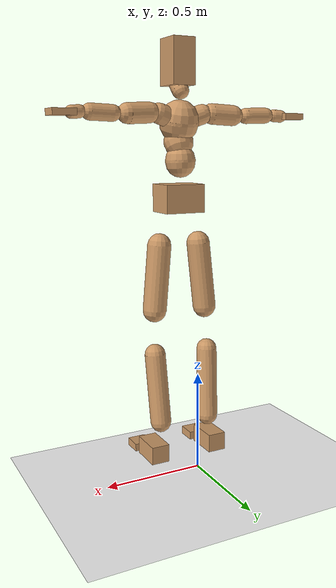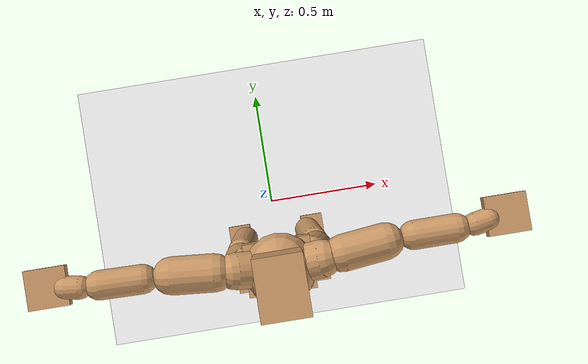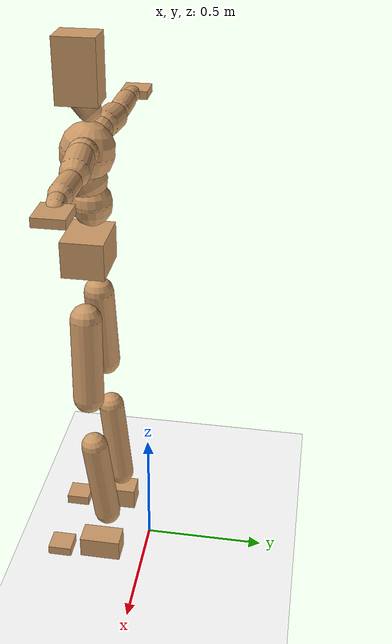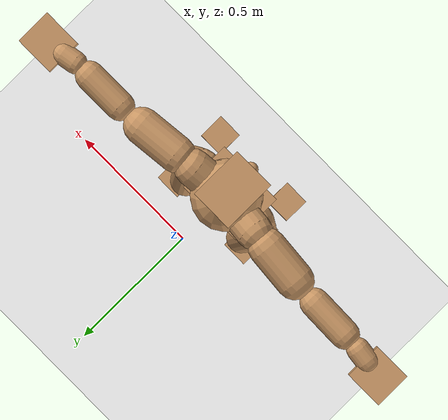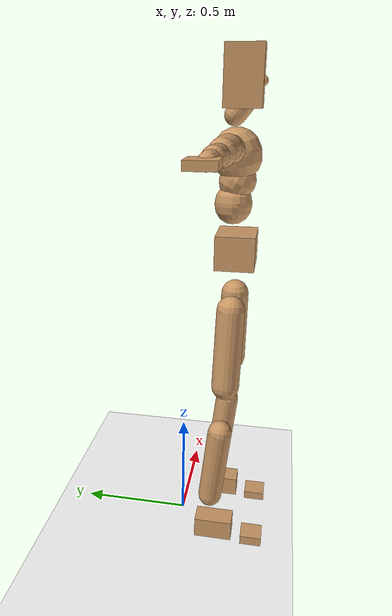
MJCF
<mujoco model="humanoid">
  <option integrator="implicitfast" />

  <visual>
    <global offwidth="1280" offheight="960" />
    <headlight active="1" ambient="0.34 0.34 0.34" diffuse="0.5 0.5 0.5" />
  </visual>

  <default>
    <joint damping="2" stiffness="2" armature="0.01" limited="true" solimplimit="0 .99 .01" />
    <geom condim="1" friction="0.7 0.005 0.0001" solimp=".99 .99 .003" solref="0.015 1" margin="0.001" rgba="0.8 0.6 .4 1" />
    <default class="smplcontact">
      <geom condim="3" friction="1. 0.005 0.0001" solref="0.015 1" solimp="0.98 0.98 0.001" priority="1" />
    </default>
    <default class="stiff_medium">
      <joint stiffness="10" />
    </default>
    <default class="stiff_medium_higher">
      <joint stiffness="50" />
    </default>
    <default class="stiff_high">
      <joint stiffness="100" />
    </default>
  </default>

  <asset>
    <texture type="skybox" builtin="gradient" rgb1="0.99 0.99 0.99" rgb2="0.608 0.828 0.892" width="100" />
    <texture builtin="flat" height="1278" mark="cross" markrgb="1 1 1" name="texgeom" random="0.01" rgb1="0.8 0.6 0.4" rgb2="0.8 0.6 0.4" type="cube" width="127" />
    <texture name="texplane" type="2d" builtin="checker" markrgb="1 1 1" rgb1="0.756 0.772 0.76" rgb2="0.6 0.6 0.6" width="100" height="100" />
    <material name="MatPlane" reflectance="0.5" texture="texplane" texrepeat="1 1" texuniform="true" />
    <material name="geom" texture="texgeom" texuniform="true" />
  </asset>

  <worldbody>
    <light name="tracking_light" pos="0 0 7" dir="0 0 -1" directional="true" cutoff="100" exponent="1" diffuse="1 1 1" specular="0.1 0.1 0.1" mode="trackcom" />
    <camera name="back" pos="0 3 2.4" xyaxes="-1 0 0 0 -1 2" mode="trackcom" />
    <camera name="side" pos="-3 0 2.4" xyaxes="0 -1 0 1 0 2" mode="trackcom" />
    <camera name="front_side" pos="-2.8 -2.8 0.8" xyaxes="0.5 -0.5 0 0.1 0.1 1" mode="trackcom" />
    <geom condim="3" name="floor" pos="0 0 0" rgba="1 1 1 1" size="100 100 .2" type="plane" material="MatPlane" />
    <body name="Pelvis" pos="-0.0018 -0.2233 1.39425" euler="90 0 0">
      <site name="Pelvis" size="0.01" />
      <freejoint name="Pelvis" />
      <geom type="box" pos="-0.0000 -0.0121 -0.0055" size="0.1069 0.0722 0.083" quat="1.0000 0.0000 0.0000 0.0000" density="3165.830099" name="Pelvis" />
      <body name="L_Hip" pos="0.10425 -0.1371 -0.0102">
        <joint name="L_Hip_x" type="hinge" pos="0 0 0" axis="1 0 0" stiffness="20.015620714285713" range="-160.0 22.92" class="stiff_medium" damping="35.83287359117287" armature="0.02851095036953482"/>
        <joint name="L_Hip_y" type="hinge" pos="0 0 0" axis="0 1 0" stiffness="19.866269693877552" range="-70.0 70.0" class="stiff_medium" damping="19.51687813836927" armature="0.019173631393182285"/>
        <joint name="L_Hip_z" type="hinge" pos="0 0 0" axis="0 0 1" stiffness="19.87905693877551" range="-28.65 90.0" class="stiff_medium" damping="23.812563344986486" armature="0.028524400066129187"/>
        <geom type="capsule" density="2040.816327" fromto="0.01035 -0.1125 -0.00135 0.0411 -0.4503 -0.0054" size="0.0615" name="L_Hip" />
        <body name="L_Knee" pos="0.05145 -0.5628 -0.00675">
          <joint name="L_Knee_x" type="hinge" pos="0 0 0" axis="1 0 0" range="-5.16 171.89" damping="17.990881080600367" armature="0.026396428561925703" stiffness="3.8318607346938776"/>
          <joint name="L_Knee_y" type="hinge" pos="0 0 0" axis="0 1 0" range="-4.58 6.88" damping="14.93313811553982" armature="0.01772299059098259" stiffness="3.932015113945578"/>
          <joint name="L_Knee_z" type="hinge" pos="0 0 0" axis="0 0 1" range="-6.88 4.58" damping="17.90521996986916" armature="0.026455159530536426" stiffness="3.7870318571428574"/>
          <geom type="capsule" density="1234.567901" fromto="-0.00405 -0.1194 -0.01305 -0.01635 -0.4776 -0.0525" size="0.0541" name="L_Knee" />
          <body name="L_Ankle" pos="-0.0204 -0.597 -0.06555">
            <joint name="L_Ankle_x" type="hinge" pos="0 0 0" axis="1 0 0" range="-45.84 45.84" class="stiff_medium" damping="9.919510798854771" armature="0.018221610090480823" stiffness="15.0"/>
            <joint name="L_Ankle_y" type="hinge" pos="0 0 0" axis="0 1 0" range="-74.48 22.92" class="stiff_medium" damping="4.917952818000753" armature="0.017915748088949295" stiffness="15.0"/>
            <joint name="L_Ankle_z" type="hinge" pos="0 0 0" axis="0 0 1" range="-4.58 4.58" class="stiff_medium" damping="9.269968981325261" armature="0.015913393502728242" stiffness="15.0"/>
            <geom type="box" pos="0.03495 -0.03585 0.0363" size="0.0483 0.0464 0.085" quat="1.0000 0.0000 0.0000 0.0000" density="449.071558" name="L_Ankle" class="smplcontact" />
            <body name="L_Toe" pos="0.0396 -0.0837 0.17895">
              <joint name="L_Toe_x" type="hinge" pos="0 0 0" axis="1 0 0" range="-91.67 22.92" armature="0.014752348892848894" damping="2.975131818207277" stiffness="3.0"/>
              <joint name="L_Toe_y" type="hinge" pos="0 0 0" axis="0 1 0" range="-4.58 4.58" armature="0.013348413454862205" damping="2.8300261611718933" stiffness="3.0"/>
              <joint name="L_Toe_z" type="hinge" pos="0 0 0" axis="0 0 1" range="-4.58 4.58" armature="0.010509731565734284" damping="2.51114295479978" stiffness="3.0"/>
              <geom type="box" pos="-0.0045 0.00825 0.0372" size="0.0478 0.02 0.0496" quat="1.0000 0.0000 0.0000 0.0000" density="423.206892" name="L_Toe" class="smplcontact" />
            </body>
          </body>
        </body>
      </body>
      <body name="R_Hip" pos="-0.10155 -0.13575 -0.00645">
        <joint name="R_Hip_x" type="hinge" pos="0 0 0" axis="1 0 0" stiffness="20.015620714285713" range="-160.0 22.92" class="stiff_medium" damping="35.83287359117287" armature="0.02851095036953482"/>
        <joint name="R_Hip_y" type="hinge" pos="0 0 0" axis="0 1 0" stiffness="19.866269693877552" range="-70.0 70.0" class="stiff_medium" damping="19.51687813836927" armature="0.019173631393182285"/>
        <joint name="R_Hip_z" type="hinge" pos="0 0 0" axis="0 0 1" stiffness="19.87905693877551" range="-90.0 28.65" class="stiff_medium" damping="23.812563344986486" armature="0.028524400066129187"/>
        <geom type="capsule" density="2040.816327" fromto="-0.01155 -0.11475 -0.0027 -0.0459 -0.45915 -0.01065" size="0.0606" name="R_Hip" />
        <body name="R_Knee" pos="-0.05745 -0.5739 -0.01335">
          <joint name="R_Knee_x" type="hinge" pos="0 0 0" axis="1 0 0" range="-5.16 171.89" damping="17.990881080600367" armature="0.026396428561925703" stiffness="3.8318607346938776"/>
          <joint name="R_Knee_y" type="hinge" pos="0 0 0" axis="0 1 0" range="-6.88 4.58" damping="14.93313811553982" armature="0.01772299059098259" stiffness="3.932015113945578"/>
          <joint name="R_Knee_z" type="hinge" pos="0 0 0" axis="0 0 1" range="-4.58 6.88" damping="17.90521996986916" armature="0.026455159530536426" stiffness="3.7870318571428574"/>
          <geom type="capsule" density="1234.567901" fromto="0.0048 -0.11955 -0.01275 0.0189 -0.47805 -0.0507" size="0.0541" name="R_Knee" />
          <body name="R_Ankle" pos="0.0237 -0.5976 -0.06345">
            <joint name="R_Ankle_x" type="hinge" pos="0 0 0" axis="1 0 0" range="-45.84 45.84" class="stiff_medium" damping="9.919510798854771" armature="0.018221610090480823" stiffness="15.0"/>
            <joint name="R_Ankle_y" type="hinge" pos="0 0 0" axis="0 1 0" range="-22.92 74.48" class="stiff_medium" damping="4.917952818000753" armature="0.017915748088949295" stiffness="15.0"/>
            <joint name="R_Ankle_z" type="hinge" pos="0 0 0" axis="0 0 1" range="-4.58 4.58" class="stiff_medium" damping="9.269968981325261" armature="0.015913393502728242" stiffness="15.0"/>
            <geom type="box" pos="-0.0318 -0.0261 0.0384" size="0.0483 0.0478 0.0865" quat="1.0000 0.0000 0.0000 0.0000" density="434.700981" name="R_Ankle" class="smplcontact" />
            <body name="R_Toe" pos="-0.0381 -0.07215 0.18495">
              <joint name="R_Toe_x" type="hinge" pos="0 0 0" axis="1 0 0" range="-91.67 22.92" armature="0.014752348892848894" damping="2.975131818207277" stiffness="3.0"/>
              <joint name="R_Toe_y" type="hinge" pos="0 0 0" axis="0 1 0" range="-4.58 4.58" armature="0.013348413454862205" damping="2.8300261611718933" stiffness="3.0"/>
              <joint name="R_Toe_z" type="hinge" pos="0 0 0" axis="0 0 1" range="-4.58 4.58" armature="0.010509731565734284" damping="2.51114295479978" stiffness="3.0"/>
              <geom type="box" pos="0.0063 0.00675 0.03405" size="0.0479 0.0216 0.0493" quat="1.0000 0.0000 0.0000 0.0000" density="407.384095" name="R_Toe" class="smplcontact" />
            </body>
          </body>
        </body>
      </body>
      <body name="Torso" pos="-0.0025 0.109 -0.0267">
        <joint name="Torso_x" type="hinge" pos="0 0 0" axis="1 0 0" range="-25.78 57.3" class="stiff_medium" damping="13.810652204593472" armature="0.009092501018959226" stiffness="9.323146326530612"/>
        <joint name="Torso_y" type="hinge" pos="0 0 0" axis="0 1 0" range="-57.3 57.3" class="stiff_high" damping="14.331171543099826" armature="0.005453647751768047" stiffness="94.1491306122449"/>
        <joint name="Torso_z" type="hinge" pos="0 0 0" axis="0 0 1" range="-34.38 34.38" class="stiff_high" damping="17.29833641675788" armature="0.007846444358372215" stiffness="95.34014042553191"/>
        <geom type="capsule" density="2040.816327" fromto="0.0025 0.0608 0.0005 0.003 0.0743 0.0006" size="0.0769" name="Torso" />
        <body name="Spine" pos="0.0055 0.1352 0.0011">
          <joint name="Spine_x" type="hinge" pos="0 0 0" axis="1 0 0" stiffness="9.198122653061224" range="-25.78 57.3" class="stiff_medium" damping="13.62544793240939" armature="0.00897056634326775"/>
          <joint name="Spine_y" type="hinge" pos="0 0 0" axis="0 1 0" stiffness="9.181372040816328" range="-57.3 57.3" class="stiff_high" damping="5.644321396937274" armature="0.005421705337566875"/>
          <joint name="Spine_z" type="hinge" pos="0 0 0" axis="0 0 1" stiffness="18.1392375" range="-34.38 34.38" class="stiff_high" damping="9.559994320421609" armature="0.006997835754189826"/>
          <geom type="capsule" density="2040.816327" fromto="0.0007 0.0238 0.0114 0.0008 0.0291 0.014" size="0.0755" name="Spine" />
          <body name="Chest" pos="0.0015 0.0529 0.0254">
            <joint name="Chest_x" type="hinge" pos="0 0 0" axis="1 0 0" stiffness="8.90027425531915" range="-25.78 57.3" class="stiff_medium" damping="13.356132991200653" armature="0.008907904701027883"/>
            <joint name="Chest_y" type="hinge" pos="0 0 0" axis="0 1 0" stiffness="8.011889047619047" range="-57.3 57.3" class="stiff_high" damping="5.2662250647625015" armature="0.005408588385784326"/>
            <joint name="Chest_z" type="hinge" pos="0 0 0" axis="0 0 1" stiffness="18.1318547826087" range="-34.38 34.38" class="stiff_high" damping="9.302458057933908" armature="0.006628583212401051"/>
            <geom type="capsule" density="2040.816327" fromto="-0.0009 0.0682 -0.0173 -0.001 0.0833 -0.0212" size="0.1002" name="Chest" />
            <body name="Neck" pos="-0.0028 0.2139 -0.0429">
              <joint name="Neck_x" type="hinge" pos="0 0 0" axis="1 0 0" range="-28.65 57.3" class="stiff_medium_higher" damping="10.000000000000004" armature="0.01000000000000001" stiffness="50.0"/>
              <joint name="Neck_y" type="hinge" pos="0 0 0" axis="0 1 0" range="-40.11 40.11" class="stiff_medium_higher" damping="10.0" armature="0.010000000000000002" stiffness="50.0"/>
              <joint name="Neck_z" type="hinge" pos="0 0 0" axis="0 0 1" range="-40.11 40.11" class="stiff_medium_higher" damping="10.0" armature="0.01" stiffness="50.0"/>
              <geom type="capsule" density="1000" fromto="0.001 0.013 0.0103 0.0041 0.052 0.0411" size="0.0436" name="Neck" />
              <body name="Head" pos="0.0052 0.065 0.0513">
                <joint name="Head_x" type="hinge" pos="0 0 0" axis="1 0 0" range="-28.65 57.3" class="stiff_medium_higher" damping="2.000000000000008" armature="0.010000000000000082" stiffness="50.0"/>
                <joint name="Head_y" type="hinge" pos="0 0 0" axis="0 1 0" range="-40.11 40.11" class="stiff_medium_higher" damping="1.9999999999999998" armature="0.009999999999999998" stiffness="50.0"/>
                <joint name="Head_z" type="hinge" pos="0 0 0" axis="0 0 1" range="-40.11 40.11" class="stiff_medium_higher" damping="2.0000000000000058" armature="0.010000000000000057" stiffness="50.0"/>
                <geom type="box" pos="-0.0042 0.0876 -0.0116" size="0.0606 0.1154 0.076" quat="1.0000 0.0000 0.0000 0.0000" density="1018.069894" name="Head" />
                <geom type="capsule" name="nose" size="0.02 0.01" pos="0 0.07 0.05" quat="1 0 0 0" mass="0" contype="0" conaffinity="0" />
              </body>
            </body>
            <body name="L_Thorax" pos="0.06107 0.0943175 -0.0264275">
              <joint name="L_Thorax_x" type="hinge" pos="0 0 0" axis="1 0 0" range="-10.89 4.58" class="stiff_medium_higher" damping="13.430877912506567" armature="0.006743873105350228" stiffness="33.43562346938776"/>
              <joint name="L_Thorax_y" type="hinge" pos="0 0 0" axis="0 1 0" range="-28.65 17.19" class="stiff_medium_higher" damping="11.84395870975866" armature="0.0052794554835980945" stiffness="33.21350051020408"/>
              <joint name="L_Thorax_z" type="hinge" pos="0 0 0" axis="0 0 1" range="-31.51 40.11" class="stiff_medium_higher" damping="11.84290484733603" armature="0.005278125365951002" stiffness="33.215958673469395"/>
              <geom type="capsule" density="1000" fromto="0.014105 0.0047275 -0.001395 0.05642 0.01891 -0.0055025" size="0.0521" name="L_Thorax" />
              <body name="L_Shoulder" pos="0.070525 0.0236375 -0.0068975">
                <joint name="L_Shoulder_x" type="hinge" pos="0 0 0" axis="1 0 0" range="-97.4 97.4" class="stiff_medium" damping="4.200573869623458" armature="0.007293874713182316" stiffness="6.719801632653062"/>
                <joint name="L_Shoulder_y" type="hinge" pos="0 0 0" axis="0 1 0" range="-108.86 80.21" class="stiff_medium" damping="3.5719924695592944" armature="0.005322246430600953" stiffness="6.659223469387755"/>
                <joint name="L_Shoulder_z" type="hinge" pos="0 0 0" axis="0 0 1" range="-97.4 85.94" class="stiff_medium" damping="3.5723414695273763" armature="0.0053204314495063935" stiffness="6.662796938775511"/>
                <geom type="capsule" density="1000" fromto="0.0402225 -0.002015 -0.0042625 0.160968 -0.007905 -0.01705" size="0.0517" name="L_Shoulder" />
                <body name="L_Elbow" pos="0.20119 -0.00992 -0.0213125">
                  <joint name="L_Elbow_x" type="hinge" pos="0 0 0" axis="1 0 0" range="-17.19 4.58" damping="3.7512094390014705" armature="0.008221713445804999" stiffness="1.3692106734693876"/>
                  <joint name="L_Elbow_y" type="hinge" pos="0 0 0" axis="0 1 0" range="-180.0 17.19" damping="3.0766314110203514" armature="0.005532912421377128" stiffness="1.368633387755102"/>
                  <joint name="L_Elbow_z" type="hinge" pos="0 0 0" axis="0 0 1" range="-100.84 4.58" damping="3.07508345121857" armature="0.005523383254833451" stiffness="1.3696153673469391"/>
                  <geom type="capsule" density="1000" fromto="0.038595 0.001395 -0.000155 0.154535 0.00558 -0.0006975" size="0.0405" name="L_Elbow" />
                  <body name="L_Wrist" pos="0.19313 0.006975 -0.00093">
                    <joint name="L_Wrist_x" type="hinge" pos="0 0 0" axis="1 0 0" range="-180.0 22.92" armature="0.00860290788008988" damping="1.5994571311848793" stiffness="1.486859530612245"/>
                    <joint name="L_Wrist_y" type="hinge" pos="0 0 0" axis="0 1 0" range="-17.19 17.19" armature="0.006335437662014366" damping="1.3682982903238872" stiffness="1.4775934285714285"/>
                    <joint name="L_Wrist_z" type="hinge" pos="0 0 0" axis="0 0 1" range="-22.92 22.92" armature="0.006206199430184709" damping="1.35598195819861" stiffness="1.4813309591836734"/>
                    <geom type="capsule" density="1000" fromto="0.01302 -0.00124 -0.002325 0.05208 -0.0050375 -0.0093" size="0.0318" name="L_Wrist" class="smplcontact" />
                    <body name="L_Hand" pos="0.0651 -0.006355 -0.0115475">
                      <joint name="L_Hand_x" type="hinge" pos="0 0 0" axis="1 0 0" range="-17.19 17.19" armature="0.009826007646420913" damping="1.7452972154880906" stiffness="1.55"/>
                      <joint name="L_Hand_y" type="hinge" pos="0 0 0" axis="0 1 0" range="-51.57 51.57" armature="0.007895802531703864" damping="1.5645123153328637" stiffness="1.55"/>
                      <joint name="L_Hand_z" type="hinge" pos="0 0 0" axis="0 0 1" range="-91.67 91.67" armature="0.007381279985826521" damping="1.5126786822078975" stiffness="1.55"/>
                      <geom type="box" pos="0.0382075 0.000775 -0.004495" size="0.0585 0.0158 0.0538" quat="1.0000 0.0000 0.0000 0.0000" density="400.552564" name="L_Hand" class="smplcontact" />
                    </body>
                  </body>
                </body>
              </body>
            </body>
            <body name="R_Thorax" pos="-0.063395 0.09207 -0.029915">
              <joint name="R_Thorax_x" type="hinge" pos="0 0 0" axis="1 0 0" range="-10.89 4.58" class="stiff_medium_higher" damping="13.430877912506567" armature="0.006743873105350228" stiffness="33.43562346938776"/>
              <joint name="R_Thorax_y" type="hinge" pos="0 0 0" axis="0 1 0" range="-17.19 28.65" class="stiff_medium_higher" damping="11.84395870975866" armature="0.0052794554835980945" stiffness="33.21350051020408"/>
              <joint name="R_Thorax_z" type="hinge" pos="0 0 0" axis="0 0 1" range="-40.11 31.51" class="stiff_medium_higher" damping="11.84290484733603" armature="0.005278125365951002" stiffness="33.215958673469395"/>
              <geom type="capsule" density="1000" fromto="-0.01488 0.0050375 -0.001395 -0.05952 0.02015 -0.0056575" size="0.0511" name="R_Thorax" />
              <body name="R_Shoulder" pos="-0.0744 0.025265 -0.0070525">
                <joint name="R_Shoulder_x" type="hinge" pos="0 0 0" axis="1 0 0" range="-97.4 97.4" class="stiff_medium" damping="4.200573869623458" armature="0.007293874713182316" stiffness="6.719801632653062"/>
                <joint name="R_Shoulder_y" type="hinge" pos="0 0 0" axis="0 1 0" range="-80.21 108.86" class="stiff_medium" damping="3.5719924695592944" armature="0.005322246430600953" stiffness="6.659223469387755"/>
                <joint name="R_Shoulder_z" type="hinge" pos="0 0 0" axis="0 0 1" range="-85.94 97.4" class="stiff_medium" damping="3.5723414695273763" armature="0.0053204314495063935" stiffness="6.662796938775511"/>
                <geom type="capsule" density="1000" fromto="-0.0392925 -0.0020925 -0.0033325 -0.157325 -0.0082925 -0.0132525" size="0.0531" name="R_Shoulder" />
                <body name="R_Elbow" pos="-0.196618 -0.0103075 -0.016585">
                  <joint name="R_Elbow_x" type="hinge" pos="0 0 0" axis="1 0 0" range="-17.19 4.58" damping="3.7512094390014705" armature="0.008221713445804999" stiffness="1.3692106734693876"/>
                  <joint name="R_Elbow_y" type="hinge" pos="0 0 0" axis="0 1 0" range="-17.19 180.0" damping="3.0766314110203514" armature="0.005532912421377128" stiffness="1.368633387755102"/>
                  <joint name="R_Elbow_z" type="hinge" pos="0 0 0" axis="0 0 1" range="-4.58 100.84" damping="3.07508345121857" armature="0.005523383254833451" stiffness="1.3696153673469391"/>
                  <geom type="capsule" density="1000" fromto="-0.0396025 0.00124 -0.0008525 -0.158255 0.004805 -0.00341" size="0.0408" name="R_Elbow" />
                  <body name="R_Wrist" pos="-0.197858 0.006045 -0.00434">
                    <joint name="R_Wrist_x" type="hinge" pos="0 0 0" axis="1 0 0" range="-180.0 22.92" armature="0.00860290788008988" damping="1.5994571311848793" stiffness="1.486859530612245"/>
                    <joint name="R_Wrist_y" type="hinge" pos="0 0 0" axis="0 1 0" range="-17.19 17.19" armature="0.006335437662014366" damping="1.3682982903238872" stiffness="1.4775934285714285"/>
                    <joint name="R_Wrist_z" type="hinge" pos="0 0 0" axis="0 0 1" range="-22.92 22.92" armature="0.006206199430184709" damping="1.35598195819861" stiffness="1.4813309591836734"/>
                    <geom type="capsule" density="1000" fromto="-0.0130975 -0.00093 -0.0016275 -0.0524675 -0.0037975 -0.0064325" size="0.0326" name="R_Wrist" class="smplcontact" />
                    <body name="R_Hand" pos="-0.065565 -0.0047275 -0.0079825">
                      <joint name="R_Hand_x" type="hinge" pos="0 0 0" axis="1 0 0" range="-17.19 17.19" armature="0.009826007646420913" damping="1.7452972154880906" stiffness="1.55"/>
                      <joint name="R_Hand_y" type="hinge" pos="0 0 0" axis="0 1 0" range="-51.57 51.57" armature="0.007895802531703864" damping="1.5645123153328637" stiffness="1.55"/>
                      <joint name="R_Hand_z" type="hinge" pos="0 0 0" axis="0 0 1" range="-91.67 91.67" armature="0.007381279985826521" damping="1.5126786822078975" stiffness="1.55"/>
                      <geom type="box" pos="-0.035805 -0.0006975 -0.0061225" size="0.0569 0.0164 0.0546" quat="1.0000 0.0000 0.0000 0.0000" density="403.679611" name="R_Hand" class="smplcontact" />
                    </body>
                  </body>
                </body>
              </body>
            </body>
          </body>
        </body>
      </body>
    </body>
  </worldbody>
  <actuator>
    <general name="L_Hip_x" joint="L_Hip_x" biastype="affine" gainprm="575.1089582783409" biasprm="-430.985873610294 -360.28117285714285 -4.7777164788230495" ctrllimited="true" ctrlrange="-1 1" forcerange="-720.5623457142857 720.5623457142857" />
    <general name="L_Hip_y" joint="L_Hip_y" biastype="affine" gainprm="436.88208847163486" biasprm="0.0 -357.5928544897959 -3.9033756276738547" ctrllimited="true" ctrlrange="-1 1" forcerange="-715.1857089795918 715.1857089795918" />
    <general name="L_Hip_z" joint="L_Hip_z" biastype="affine" gainprm="370.49589223625946" biasprm="191.57120091609366 -357.82302489795916 -4.762512668997298" ctrllimited="true" ctrlrange="-1 1" forcerange="-715.6460497959183 715.6460497959183" />
    <general name="L_Knee_x" joint="L_Knee_x" biastype="affine" gainprm="532.8384166851074" biasprm="501.7800012081782 -344.867466122449 -4.497720270150092" ctrllimited="true" ctrlrange="-1 1" forcerange="-689.734932244898 689.734932244898" />
    <general name="L_Knee_y" joint="L_Knee_y" biastype="affine" gainprm="35.39074276489669" biasprm="7.10285413257089 -353.88136025510204 -3.733284528884955" ctrllimited="true" ctrlrange="-1 1" forcerange="-707.7627205102041 707.7627205102041" />
    <general name="L_Knee_z" joint="L_Knee_z" biastype="affine" gainprm="34.085797336654615" biasprm="-6.840954090253544 -340.83286714285714 -4.47630499246729" ctrllimited="true" ctrlrange="-1 1" forcerange="-681.6657342857143 681.6657342857143" />
    <general name="L_Ankle_x" joint="L_Ankle_x" biastype="affine" gainprm="108.0079554304171" biasprm="0.0 -135.0 -3.306503599618257" ctrllimited="true" ctrlrange="-1 1" forcerange="-270.0 270.0" />
    <general name="L_Ankle_y" joint="L_Ankle_y" biastype="affine" gainprm="114.74667167236721" biasprm="-60.742693957158664 -135.0 -3.278635212000502" ctrllimited="true" ctrlrange="-1 1" forcerange="-270.0 270.0" />
    <general name="L_Ankle_z" joint="L_Ankle_z" biastype="affine" gainprm="10.791370765080938" biasprm="0.0 -135.0 -3.089989660441754" ctrllimited="true" ctrlrange="-1 1" forcerange="-270.0 270.0" />
    <general name="L_Toe_x" joint="L_Toe_x" biastype="affine" gainprm="107.99853065245631" biasprm="-64.79534848028948 -108.0 -1.1900527272829107" ctrllimited="true" ctrlrange="-1 1" forcerange="-216.0 216.0" />
    <general name="L_Toe_y" joint="L_Toe_y" biastype="affine" gainprm="8.633096612064751" biasprm="0.0 -108.0 -1.1320104644687574" ctrllimited="true" ctrlrange="-1 1" forcerange="-216.0 216.0" />
    <general name="L_Toe_z" joint="L_Toe_z" biastype="affine" gainprm="8.633096612064751" biasprm="0.0 -108.0 -1.0044571819199122" ctrllimited="true" ctrlrange="-1 1" forcerange="-216.0 216.0" />
    <general name="R_Hip_x" joint="R_Hip_x" biastype="affine" gainprm="575.1089582783409" biasprm="-430.985873610294 -360.28117285714285 -4.7777164788230495" ctrllimited="true" ctrlrange="-1 1" forcerange="-720.5623457142857 720.5623457142857" />
    <general name="R_Hip_y" joint="R_Hip_y" biastype="affine" gainprm="436.88208847163486" biasprm="0.0 -357.5928544897959 -3.9033756276738547" ctrllimited="true" ctrlrange="-1 1" forcerange="-715.1857089795918 715.1857089795918" />
    <general name="R_Hip_z" joint="R_Hip_z" biastype="affine" gainprm="370.49589223625946" biasprm="-191.57120091609366 -357.82302489795916 -4.762512668997298" ctrllimited="true" ctrlrange="-1 1" forcerange="-715.6460497959183 715.6460497959183" />
    <general name="R_Knee_x" joint="R_Knee_x" biastype="affine" gainprm="532.8384166851074" biasprm="501.7800012081782 -344.867466122449 -4.497720270150092" ctrllimited="true" ctrlrange="-1 1" forcerange="-689.734932244898 689.734932244898" />
    <general name="R_Knee_y" joint="R_Knee_y" biastype="affine" gainprm="35.39074276489669" biasprm="-7.10285413257089 -353.88136025510204 -3.733284528884955" ctrllimited="true" ctrlrange="-1 1" forcerange="-707.7627205102041 707.7627205102041" />
    <general name="R_Knee_z" joint="R_Knee_z" biastype="affine" gainprm="34.085797336654615" biasprm="6.840954090253544 -340.83286714285714 -4.47630499246729" ctrllimited="true" ctrlrange="-1 1" forcerange="-681.6657342857143 681.6657342857143" />
    <general name="R_Ankle_x" joint="R_Ankle_x" biastype="affine" gainprm="108.0079554304171" biasprm="0.0 -135.0 -3.306503599618257" ctrllimited="true" ctrlrange="-1 1" forcerange="-270.0 270.0" />
    <general name="R_Ankle_y" joint="R_Ankle_y" biastype="affine" gainprm="114.74667167236721" biasprm="60.742693957158664 -135.0 -3.278635212000502" ctrllimited="true" ctrlrange="-1 1" forcerange="-270.0 270.0" />
    <general name="R_Ankle_z" joint="R_Ankle_z" biastype="affine" gainprm="10.791370765080938" biasprm="0.0 -135.0 -3.089989660441754" ctrllimited="true" ctrlrange="-1 1" forcerange="-270.0 270.0" />
    <general name="R_Toe_x" joint="R_Toe_x" biastype="affine" gainprm="107.99853065245631" biasprm="-64.79534848028948 -108.0 -1.1900527272829107" ctrllimited="true" ctrlrange="-1 1" forcerange="-216.0 216.0" />
    <general name="R_Toe_y" joint="R_Toe_y" biastype="affine" gainprm="8.633096612064751" biasprm="0.0 -108.0 -1.1320104644687574" ctrllimited="true" ctrlrange="-1 1" forcerange="-216.0 216.0" />
    <general name="R_Toe_z" joint="R_Toe_z" biastype="affine" gainprm="8.633096612064751" biasprm="0.0 -108.0 -1.0044571819199122" ctrllimited="true" ctrlrange="-1 1" forcerange="-216.0 216.0" />
    <general name="Torso_x" joint="Torso_x" biastype="affine" gainprm="162.2249324590423" biasprm="61.54706152032995 -223.7555118367347 -3.6828405878915924" ctrllimited="true" ctrlrange="-1 1" forcerange="-335.63326775510205 335.63326775510205" />
    <general name="Torso_y" joint="Torso_y" biastype="affine" gainprm="225.974557843997" biasprm="0.0 -225.95791346938776 -2.866234308619965" ctrllimited="true" ctrlrange="-1 1" forcerange="-338.93687020408163 338.93687020408163" />
    <general name="Torso_z" joint="Torso_z" biastype="affine" gainprm="137.29991517080745" biasprm="0.0 -228.8163370212766 -3.459667283351576" ctrllimited="true" ctrlrange="-1 1" forcerange="-343.2245055319149 343.2245055319149" />
    <general name="Spine_x" joint="Spine_x" biastype="affine" gainprm="160.04949122128795" biasprm="60.721713568789056 -220.7549436734694 -3.633452781975837" ctrllimited="true" ctrlrange="-1 1" forcerange="-331.1324155102041 331.1324155102041" />
    <general name="Spine_y" joint="Spine_y" biastype="affine" gainprm="220.36916048323718" biasprm="0.0 -220.35292897959184 -2.822160698468637" ctrllimited="true" ctrlrange="-1 1" forcerange="-330.52939346938774 330.52939346938774" />
    <general name="Spine_z" joint="Spine_z" biastype="affine" gainprm="130.61213036278338" biasprm="0.0 -217.67085 -3.18666477347387" ctrllimited="true" ctrlrange="-1 1" forcerange="-326.506275 326.506275" />
    <general name="Chest_x" joint="Chest_x" biastype="affine" gainprm="154.86685925194476" biasprm="58.7554574340551 -213.6065821276596 -3.561635464320174" ctrllimited="true" ctrlrange="-1 1" forcerange="-320.4098731914894 320.4098731914894" />
    <general name="Chest_y" joint="Chest_y" biastype="affine" gainprm="192.29950114859662" biasprm="0.0 -192.28533714285712 -2.6331125323812508" ctrllimited="true" ctrlrange="-1 1" forcerange="-288.4280057142857 288.4280057142857" />
    <general name="Chest_z" joint="Chest_z" biastype="affine" gainprm="130.55897088205305" biasprm="0.0 -217.58225739130438 -3.1008193526446357" ctrllimited="true" ctrlrange="-1 1" forcerange="-326.37338608695654 326.37338608695654" />
    <general name="Neck_x" joint="Neck_x" biastype="affine" gainprm="27.00198885760427" biasprm="9.000662952534757 -36.0 -0.8000000000000004" ctrllimited="true" ctrlrange="-1 1" forcerange="-72.0 72.0" />
    <general name="Neck_y" joint="Neck_y" biastype="affine" gainprm="25.20185626709732" biasprm="0.0 -36.0 -0.8" ctrllimited="true" ctrlrange="-1 1" forcerange="-72.0 72.0" />
    <general name="Neck_z" joint="Neck_z" biastype="affine" gainprm="25.20185626709732" biasprm="0.0 -36.0 -0.8" ctrllimited="true" ctrlrange="-1 1" forcerange="-72.0 72.0" />
    <general name="Head_x" joint="Head_x" biastype="affine" gainprm="18.001325905069514" biasprm="6.000441968356505 -24.0 -0.8000000000000033" ctrllimited="true" ctrlrange="-1 1" forcerange="-48.0 48.0" />
    <general name="Head_y" joint="Head_y" biastype="affine" gainprm="16.801237511398213" biasprm="0.0 -24.0 -0.7999999999999999" ctrllimited="true" ctrlrange="-1 1" forcerange="-48.0 48.0" />
    <general name="Head_z" joint="Head_z" biastype="affine" gainprm="16.801237511398213" biasprm="0.0 -24.0 -0.8000000000000024" ctrllimited="true" ctrlrange="-1 1" forcerange="-48.0 48.0" />
    <general name="L_Thorax_x" joint="L_Thorax_x" biastype="affine" gainprm="10.833239714349121" biasprm="-4.4187293211081435 -80.24549632653061 -1.0744702330005254" ctrllimited="true" ctrlrange="-1 1" forcerange="-160.49099265306123 160.49099265306123" />
    <general name="L_Thorax_y" joint="L_Thorax_y" biastype="affine" gainprm="31.887309180393395" biasprm="-7.971827295098349 -79.71240122448978 -0.9475166967806928" ctrllimited="true" ctrlrange="-1 1" forcerange="-159.42480244897956 159.42480244897956" />
    <general name="L_Thorax_z" joint="L_Thorax_z" biastype="affine" gainprm="49.8241297438119" biasprm="5.98279134036278 -79.71830081632655 -0.9474323877868823" ctrllimited="true" ctrlrange="-1 1" forcerange="-159.4366016326531 159.4366016326531" />
    <general name="L_Shoulder_x" joint="L_Shoulder_x" biastype="affine" gainprm="54.831990872567324" biasprm="0.0 -32.2550478367347 -1.1201530318995887" ctrllimited="true" ctrlrange="-1 1" forcerange="-64.5100956734694 64.5100956734694" />
    <general name="L_Shoulder_y" joint="L_Shoulder_y" biastype="affine" gainprm="52.739356038732126" biasprm="-7.9916567964757785 -31.964272653061222 -0.952531325215812" ctrllimited="true" ctrlrange="-1 1" forcerange="-63.928545306122444 63.928545306122444" />
    <general name="L_Shoulder_z" joint="L_Shoulder_z" biastype="affine" gainprm="51.16846795221352" biasprm="-3.1983781102452724 -31.98142530612245 -0.9526243918739671" ctrllimited="true" ctrlrange="-1 1" forcerange="-63.9628506122449 63.9628506122449" />
    <general name="L_Elbow_x" joint="L_Elbow_x" biastype="affine" gainprm="9.364370274135227" biasprm="-5.424194265358073 -49.291584244897955 -0.6001935102402354" ctrllimited="true" ctrlrange="-1 1" forcerange="-98.58316848979591 98.58316848979591" />
    <general name="L_Elbow_y" joint="L_Elbow_y" biastype="affine" gainprm="84.78555943298619" biasprm="-70.00323003846282 -49.27080195918367 -0.49226102576325625" ctrllimited="true" ctrlrange="-1 1" forcerange="-98.54160391836734 98.54160391836734" />
    <general name="L_Elbow_z" joint="L_Elbow_z" biastype="affine" gainprm="45.359839041363344" biasprm="-41.41849844547179 -49.306153224489805 -0.4920133521949712" ctrllimited="true" ctrlrange="-1 1" forcerange="-98.61230644897961 98.61230644897961" />
    <general name="L_Wrist_x" joint="L_Wrist_x" biastype="affine" gainprm="15.797683800581504" biasprm="-12.228958069166877 -8.92115718367347 -0.6397828524739517" ctrllimited="true" ctrlrange="-1 1" forcerange="-17.84231436734694 17.84231436734694" />
    <general name="L_Wrist_y" joint="L_Wrist_y" biastype="affine" gainprm="2.659864086290334" biasprm="0.0 -8.86556057142857 -0.5473193161295549" ctrllimited="true" ctrlrange="-1 1" forcerange="-17.73112114285714 17.73112114285714" />
    <general name="L_Wrist_z" joint="L_Wrist_z" biastype="affine" gainprm="3.5554561826046047" biasprm="0.0 -8.88798575510204 -0.542392783279444" ctrllimited="true" ctrlrange="-1 1" forcerange="-17.77597151020408 17.77597151020408" />
    <general name="L_Hand_x" joint="L_Hand_x" biastype="affine" gainprm="2.7902055152857757" biasprm="0.0 -9.3 -0.6981188861952363" ctrllimited="true" ctrlrange="-1 1" forcerange="-18.6 18.6" />
    <general name="L_Hand_y" joint="L_Hand_y" biastype="affine" gainprm="8.370616545857324" biasprm="0.0 -9.3 -0.6258049261331455" ctrllimited="true" ctrlrange="-1 1" forcerange="-18.6 18.6" />
    <general name="L_Hand_z" joint="L_Hand_z" biastype="affine" gainprm="14.879472925319778" biasprm="0.0 -9.3 -0.605071472883159" ctrllimited="true" ctrlrange="-1 1" forcerange="-18.6 18.6" />
    <general name="R_Thorax_x" joint="R_Thorax_x" biastype="affine" gainprm="10.833239714349121" biasprm="-4.4187293211081435 -80.24549632653061 -1.0744702330005254" ctrllimited="true" ctrlrange="-1 1" forcerange="-160.49099265306123 160.49099265306123" />
    <general name="R_Thorax_y" joint="R_Thorax_y" biastype="affine" gainprm="31.887309180393395" biasprm="7.971827295098343 -79.71240122448978 -0.9475166967806928" ctrllimited="true" ctrlrange="-1 1" forcerange="-159.42480244897956 159.42480244897956" />
    <general name="R_Thorax_z" joint="R_Thorax_z" biastype="affine" gainprm="49.8241297438119" biasprm="-5.98279134036278 -79.71830081632655 -0.9474323877868823" ctrllimited="true" ctrlrange="-1 1" forcerange="-159.4366016326531 159.4366016326531" />
    <general name="R_Shoulder_x" joint="R_Shoulder_x" biastype="affine" gainprm="54.831990872567324" biasprm="0.0 -32.2550478367347 -1.1201530318995887" ctrllimited="true" ctrlrange="-1 1" forcerange="-64.5100956734694 64.5100956734694" />
    <general name="R_Shoulder_y" joint="R_Shoulder_y" biastype="affine" gainprm="52.739356038732126" biasprm="7.9916567964757785 -31.964272653061222 -0.952531325215812" ctrllimited="true" ctrlrange="-1 1" forcerange="-63.928545306122444 63.928545306122444" />
    <general name="R_Shoulder_z" joint="R_Shoulder_z" biastype="affine" gainprm="51.16846795221352" biasprm="3.1983781102452653 -31.98142530612245 -0.9526243918739671" ctrllimited="true" ctrlrange="-1 1" forcerange="-63.9628506122449 63.9628506122449" />
    <general name="R_Elbow_x" joint="R_Elbow_x" biastype="affine" gainprm="9.364370274135227" biasprm="-5.424194265358073 -49.291584244897955 -0.6001935102402354" ctrllimited="true" ctrlrange="-1 1" forcerange="-98.58316848979591 98.58316848979591" />
    <general name="R_Elbow_y" joint="R_Elbow_y" biastype="affine" gainprm="84.78555943298619" biasprm="70.00323003846282 -49.27080195918367 -0.49226102576325625" ctrllimited="true" ctrlrange="-1 1" forcerange="-98.54160391836734 98.54160391836734" />
    <general name="R_Elbow_z" joint="R_Elbow_z" biastype="affine" gainprm="45.359839041363344" biasprm="41.41849844547178 -49.306153224489805 -0.4920133521949712" ctrllimited="true" ctrlrange="-1 1" forcerange="-98.61230644897961 98.61230644897961" />
    <general name="R_Wrist_x" joint="R_Wrist_x" biastype="affine" gainprm="15.797683800581504" biasprm="-12.228958069166877 -8.92115718367347 -0.6397828524739517" ctrllimited="true" ctrlrange="-1 1" forcerange="-17.84231436734694 17.84231436734694" />
    <general name="R_Wrist_y" joint="R_Wrist_y" biastype="affine" gainprm="2.659864086290334" biasprm="0.0 -8.86556057142857 -0.5473193161295549" ctrllimited="true" ctrlrange="-1 1" forcerange="-17.73112114285714 17.73112114285714" />
    <general name="R_Wrist_z" joint="R_Wrist_z" biastype="affine" gainprm="3.5554561826046047" biasprm="0.0 -8.88798575510204 -0.542392783279444" ctrllimited="true" ctrlrange="-1 1" forcerange="-17.77597151020408 17.77597151020408" />
    <general name="R_Hand_x" joint="R_Hand_x" biastype="affine" gainprm="2.7902055152857757" biasprm="0.0 -9.3 -0.6981188861952363" ctrllimited="true" ctrlrange="-1 1" forcerange="-18.6 18.6" />
    <general name="R_Hand_y" joint="R_Hand_y" biastype="affine" gainprm="8.370616545857324" biasprm="0.0 -9.3 -0.6258049261331455" ctrllimited="true" ctrlrange="-1 1" forcerange="-18.6 18.6" />
    <general name="R_Hand_z" joint="R_Hand_z" biastype="affine" gainprm="14.879472925319778" biasprm="0.0 -9.3 -0.605071472883159" ctrllimited="true" ctrlrange="-1 1" forcerange="-18.6 18.6" />
  </actuator>
  <contact>
    <exclude body1="Torso" body2="Chest" />
    <exclude body1="Head" body2="Chest" />
    <exclude body1="R_Knee" body2="R_Toe" />
    <exclude body1="R_Knee" body2="L_Ankle" />
    <exclude body1="R_Knee" body2="L_Toe" />
    <exclude body1="L_Knee" body2="L_Toe" />
    <exclude body1="L_Knee" body2="R_Ankle" />
    <exclude body1="L_Knee" body2="R_Toe" />
    <exclude body1="L_Shoulder" body2="Chest" />
    <exclude body1="R_Shoulder" body2="Chest" />
  </contact>
  <sensor>
    <framelinvel name="sensor_Pelvis_framelinvel" objtype="xbody" objname="Pelvis" />
    <framelinvel name="sensor_L_Hip_framelinvel" objtype="xbody" objname="L_Hip" />
    <framelinvel name="sensor_L_Knee_framelinvel" objtype="xbody" objname="L_Knee" />
    <framelinvel name="sensor_L_Ankle_framelinvel" objtype="xbody" objname="L_Ankle" />
    <framelinvel name="sensor_L_Toe_framelinvel" objtype="xbody" objname="L_Toe" />
    <framelinvel name="sensor_R_Hip_framelinvel" objtype="xbody" objname="R_Hip" />
    <framelinvel name="sensor_R_Knee_framelinvel" objtype="xbody" objname="R_Knee" />
    <framelinvel name="sensor_R_Ankle_framelinvel" objtype="xbody" objname="R_Ankle" />
    <framelinvel name="sensor_R_Toe_framelinvel" objtype="xbody" objname="R_Toe" />
    <framelinvel name="sensor_Torso_framelinvel" objtype="xbody" objname="Torso" />
    <framelinvel name="sensor_Spine_framelinvel" objtype="xbody" objname="Spine" />
    <framelinvel name="sensor_Chest_framelinvel" objtype="xbody" objname="Chest" />
    <framelinvel name="sensor_Neck_framelinvel" objtype="xbody" objname="Neck" />
    <framelinvel name="sensor_Head_framelinvel" objtype="xbody" objname="Head" />
    <framelinvel name="sensor_L_Thorax_framelinvel" objtype="xbody" objname="L_Thorax" />
    <framelinvel name="sensor_L_Shoulder_framelinvel" objtype="xbody" objname="L_Shoulder" />
    <framelinvel name="sensor_L_Elbow_framelinvel" objtype="xbody" objname="L_Elbow" />
    <framelinvel name="sensor_L_Wrist_framelinvel" objtype="xbody" objname="L_Wrist" />
    <framelinvel name="sensor_L_Hand_framelinvel" objtype="xbody" objname="L_Hand" />
    <framelinvel name="sensor_R_Thorax_framelinvel" objtype="xbody" objname="R_Thorax" />
    <framelinvel name="sensor_R_Shoulder_framelinvel" objtype="xbody" objname="R_Shoulder" />
    <framelinvel name="sensor_R_Elbow_framelinvel" objtype="xbody" objname="R_Elbow" />
    <framelinvel name="sensor_R_Wrist_framelinvel" objtype="xbody" objname="R_Wrist" />
    <framelinvel name="sensor_R_Hand_framelinvel" objtype="xbody" objname="R_Hand" />
    <frameangvel name="sensor_Pelvis_frameangvel" objtype="xbody" objname="Pelvis" />
    <frameangvel name="sensor_L_Hip_frameangvel" objtype="xbody" objname="L_Hip" />
    <frameangvel name="sensor_L_Knee_frameangvel" objtype="xbody" objname="L_Knee" />
    <frameangvel name="sensor_L_Ankle_frameangvel" objtype="xbody" objname="L_Ankle" />
    <frameangvel name="sensor_L_Toe_frameangvel" objtype="xbody" objname="L_Toe" />
    <frameangvel name="sensor_R_Hip_frameangvel" objtype="xbody" objname="R_Hip" />
    <frameangvel name="sensor_R_Knee_frameangvel" objtype="xbody" objname="R_Knee" />
    <frameangvel name="sensor_R_Ankle_frameangvel" objtype="xbody" objname="R_Ankle" />
    <frameangvel name="sensor_R_Toe_frameangvel" objtype="xbody" objname="R_Toe" />
    <frameangvel name="sensor_Torso_frameangvel" objtype="xbody" objname="Torso" />
    <frameangvel name="sensor_Spine_frameangvel" objtype="xbody" objname="Spine" />
    <frameangvel name="sensor_Chest_frameangvel" objtype="xbody" objname="Chest" />
    <frameangvel name="sensor_Neck_frameangvel" objtype="xbody" objname="Neck" />
    <frameangvel name="sensor_Head_frameangvel" objtype="xbody" objname="Head" />
    <frameangvel name="sensor_L_Thorax_frameangvel" objtype="xbody" objname="L_Thorax" />
    <frameangvel name="sensor_L_Shoulder_frameangvel" objtype="xbody" objname="L_Shoulder" />
    <frameangvel name="sensor_L_Elbow_frameangvel" objtype="xbody" objname="L_Elbow" />
    <frameangvel name="sensor_L_Wrist_frameangvel" objtype="xbody" objname="L_Wrist" />
    <frameangvel name="sensor_L_Hand_frameangvel" objtype="xbody" objname="L_Hand" />
    <frameangvel name="sensor_R_Thorax_frameangvel" objtype="xbody" objname="R_Thorax" />
    <frameangvel name="sensor_R_Shoulder_frameangvel" objtype="xbody" objname="R_Shoulder" />
    <frameangvel name="sensor_R_Elbow_frameangvel" objtype="xbody" objname="R_Elbow" />
    <frameangvel name="sensor_R_Wrist_frameangvel" objtype="xbody" objname="R_Wrist" />
    <frameangvel name="sensor_R_Hand_frameangvel" objtype="xbody" objname="R_Hand" />
    <subtreelinvel name="Chest_subtreelinvel" body="Chest" />
    <gyro name="Pelvis_gyro" site="Pelvis" />
  </sensor>
</mujoco>
